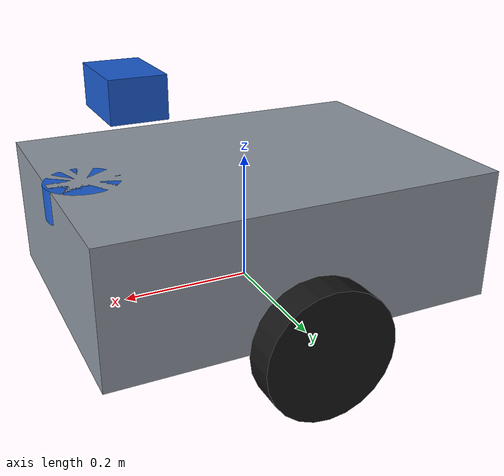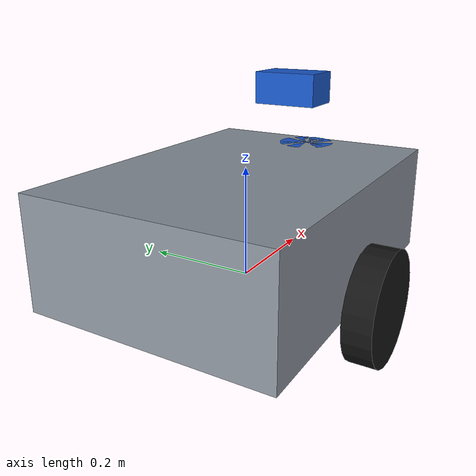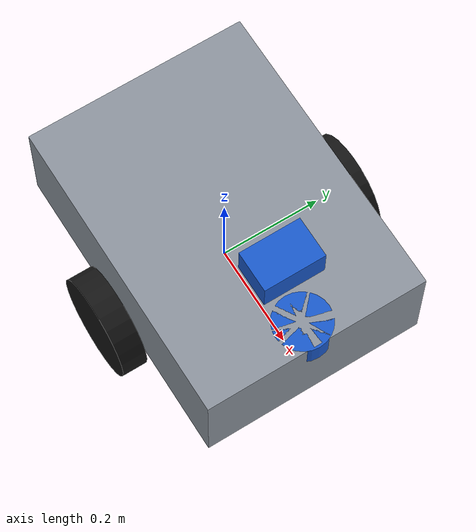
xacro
<?xml version="1.0"?>
<robot name="ros1_agv_lab" xmlns:xacro="http://www.ros.org/wiki/xacro">
  <xacro:arg name="use_camera" default="true" />

  <xacro:property name="pi" value="3.141592653589793" />
  <xacro:property name="body_length" value="0.60" />
  <xacro:property name="body_width" value="0.44" />
  <xacro:property name="body_height" value="0.20" />
  <xacro:property name="wheel_radius" value="0.10" />
  <xacro:property name="wheel_width" value="0.05" />
  <xacro:property name="wheel_y" value="0.25" />

  <xacro:include filename="$(find ros1_description_lab)/urdf/macros/components.xacro" />

  <material name="body_gray">
    <color rgba="0.55 0.58 0.62 1.0" />
  </material>

  <material name="sensor_blue">
    <color rgba="0.10 0.35 0.80 1.0" />
  </material>

  <material name="wheel_black">
    <color rgba="0.08 0.08 0.08 1.0" />
  </material>

  <link name="base_link">
    <visual>
      <origin xyz="0 0 ${body_height / 2.0}" rpy="0 0 0" />
      <geometry>
        <box size="${body_length} ${body_width} ${body_height}" />
      </geometry>
      <material name="body_gray" />
    </visual>
  </link>

  <xacro:wheel side="left"
               y="${wheel_y}"
               wheel_radius="${wheel_radius}"
               wheel_width="${wheel_width}" />

  <xacro:wheel side="right"
               y="${-wheel_y}"
               wheel_radius="${wheel_radius}"
               wheel_width="${wheel_width}" />

  <link name="laser_link">
    <visual>
      <origin xyz="0 0 0.025" rpy="0 0 0" />
      <geometry>
        <cylinder radius="0.055" length="0.05" />
      </geometry>
      <material name="sensor_blue" />
    </visual>
  </link>

  <joint name="laser_joint" type="fixed">
    <parent link="base_link" />
    <child link="laser_link" />
    <origin xyz="0.25 0 0.15" rpy="0 0 0" />
  </joint>

  <xacro:box_sensor name="imu"
                    xyz="0 0 0.10"
                    size="0.06 0.05 0.02" />

  <xacro:if value="$(arg use_camera)">
    <xacro:box_sensor name="camera"
                      xyz="0.18 0 0.32"
                      size="0.08 0.12 0.06" />
  </xacro:if>
</robot>

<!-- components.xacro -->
<robot xmlns:xacro="http://www.ros.org/wiki/xacro">
  <xacro:macro name="wheel" params="side y wheel_radius wheel_width">
    <link name="${side}_wheel_link">
      <visual>
        <origin xyz="0 0 0" rpy="${pi / 2.0} 0 0" />
        <geometry>
          <cylinder radius="${wheel_radius}" length="${wheel_width}" />
        </geometry>
        <material name="wheel_black" />
      </visual>
    </link>

    <joint name="${side}_wheel_joint" type="continuous">
      <parent link="base_link" />
      <child link="${side}_wheel_link" />
      <origin xyz="0 ${y} 0" rpy="0 0 0" />
      <axis xyz="0 1 0" />
    </joint>
  </xacro:macro>

  <xacro:macro name="box_sensor" params="name xyz size">
    <link name="${name}_link">
      <visual>
        <origin xyz="0 0 0" rpy="0 0 0" />
        <geometry>
          <box size="${size}" />
        </geometry>
        <material name="sensor_blue" />
      </visual>
    </link>

    <joint name="${name}_joint" type="fixed">
      <parent link="base_link" />
      <child link="${name}_link" />
      <origin xyz="${xyz}" rpy="0 0 0" />
    </joint>
  </xacro:macro>
</robot>
